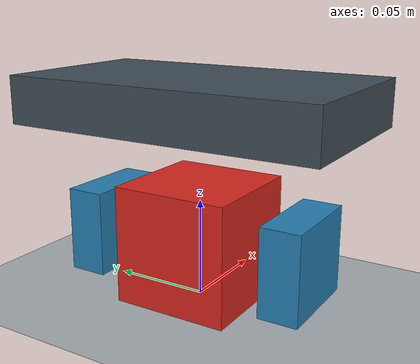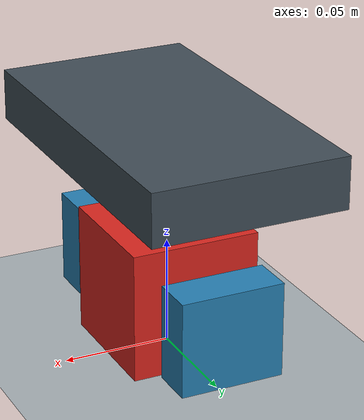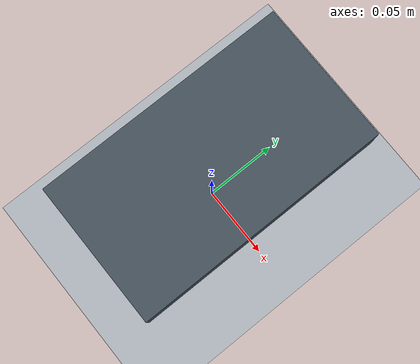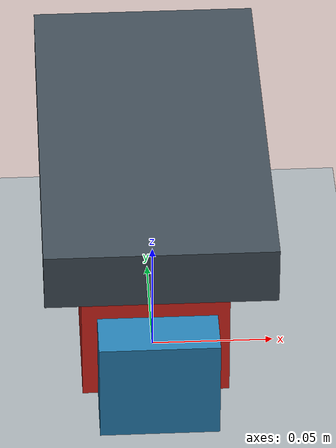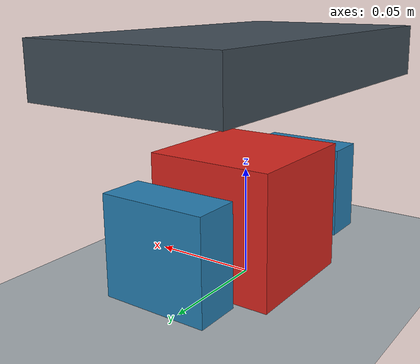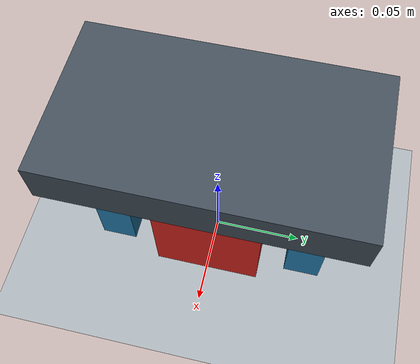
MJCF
<mujoco model="minimal_dynamic_grasp">
  <compiler autolimits="true" />
  <option timestep="0.0005" integrator="implicitfast" gravity="0 0 -9.81" noslip_iterations="10" />
  <visual><global offwidth="960" offheight="720" /></visual>
  <default>
    <geom condim="1" friction="0 0 0" solref="0.002 1" solimp="0.95 0.99 0.001" />
    <joint damping="2" armature="0.002" />
  </default>
  <worldbody>
    <light pos="0 -0.3 1" dir="0 0 -1" />
    <geom name="table" type="plane" size="0.5 0.4 0.01" rgba="0.65 0.68 0.7 1" friction="0 0 0" condim="1" />
    <body name="cube" pos="0 0 0.03">
      <freejoint />
      <geom name="cube_geom" type="box" size="0.03 0.03 0.03" mass="0.08" rgba="0.85 0.15 0.12 1" friction="0 0 0" condim="1" />
    </body>
    <body name="target" mocap="true" pos="0 0 0.10" />
    <body name="gripper" pos="0 0 0.10">
      <freejoint />
      <geom name="palm" type="box" size="0.045 0.08 0.012" mass="0.25" rgba="0.25 0.3 0.34 1" friction="0 0 0" condim="1" />
      <body name="left_finger" pos="0 0.055 -0.07">
        <joint name="left_slide" type="slide" axis="0 -1 0" range="0 0.025" />
        <geom name="left_pad" type="box" size="0.024 0.01 0.022" mass="0.04" friction="0 0 0" rgba="0.15 0.5 0.7 1" condim="1" />
      </body>
      <body name="right_finger" pos="0 -0.055 -0.07">
        <joint name="right_slide" type="slide" axis="0 1 0" range="0 0.025" />
        <geom name="right_pad" type="box" size="0.024 0.01 0.022" mass="0.04" friction="0 0 0" rgba="0.15 0.5 0.7 1" condim="1" />
      </body>
    </body>
  </worldbody>
  <equality><weld body1="target" body2="gripper" solref="0.005 1" /></equality>
  <actuator>
    <position name="left_motor" joint="left_slide" kp="800" kv="8" ctrlrange="0 0.025" forcerange="-5 5" />
    <position name="right_motor" joint="right_slide" kp="800" kv="8" ctrlrange="0 0.025" forcerange="-5 5" />
  </actuator>
</mujoco>
